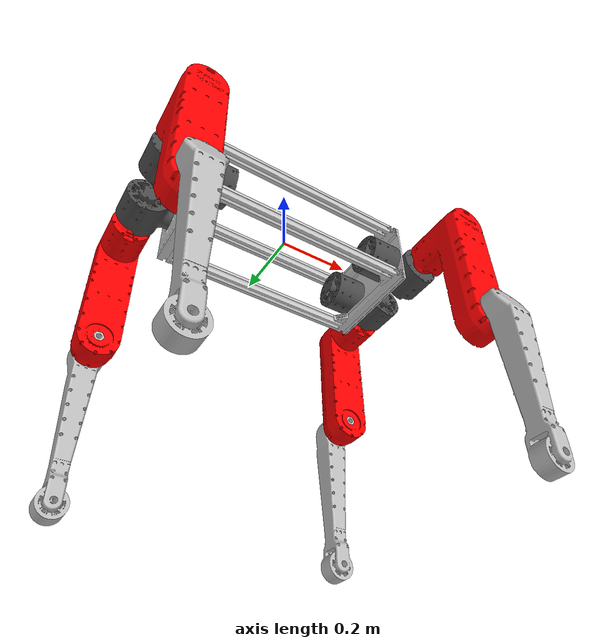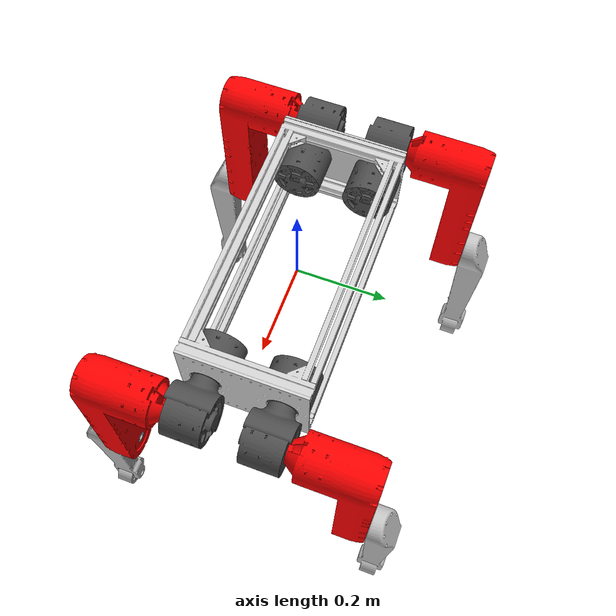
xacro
<?xml version="1.0"?>
 <robot name="dream_walker" xmlns:xacro="http://ros.org/wiki/xacro">
  <xacro:include filename="$(find dream_walker_description)/urdf/body/body.urdf.xacro"/>
  <xacro:include filename="$(find dream_walker_description)/urdf/leg/leg.param.xacro"/>
  <xacro:include filename="$(find dream_walker_description)/urdf/leg/leg.urdf.xacro"/>

  <!-- body -->
  <link name="base_link"/>
  <xacro:body parent="base_link">
  </xacro:body>

  <!-- leg -->
  <xacro:zero_leg prefix="A0" parent="base">
    <origin xyz="${joint_x0} -${joint_y0} ${joint_z0}" rpy="0 0 0"/>
    <origin xyz="-${visual_x0} ${visual_y0} -${visual_z0}"/>
    <origin xyz="-${visual_x0} ${visual_y0} -${visual_z0}"/>
    <origin xyz="-${x0} ${y0} ${z0}"/>
    <inertia ixx="${ixx0}" ixy="-${ixy0}" ixz="${ixz0}" iyy="${iyy0}" iyz="${iyz0}" izz="${izz0}"/>
  </xacro:zero_leg>
  <xacro:zero_leg prefix="B0" parent="base">
    <origin xyz="${joint_x0} ${joint_y0} ${joint_z0}" rpy="0 0 0"/>
    <origin xyz="-${visual_x0} -${visual_y0} -${visual_z0}"/>
    <origin xyz="-${visual_x0} -${visual_y0} -${visual_z0}"/>
    <origin xyz="-${x0} -${y0} ${z0}"/>
    <inertia ixx="${ixx0}" ixy="${ixy0}" ixz="${ixz0}" iyy="${iyy0}" iyz="${iyz0}" izz="${izz0}"/>
  </xacro:zero_leg>
  <xacro:zero_leg prefix="C0" parent="base">
    <origin xyz="-${joint_x0} -${joint_y0} ${joint_z0}" rpy="0 0 0"/>
    <origin xyz="${visual_x0} ${visual_y0} -${visual_z0}"/>
    <origin xyz="${visual_x0} ${visual_y0} -${visual_z0}"/>
    <origin xyz="${x0} ${y0} ${z0}"/>
    <inertia ixx="${ixx0}" ixy="-${ixy0}" ixz="${ixz0}" iyy="${iyy0}" iyz="${iyz0}" izz="${izz0}"/>
  </xacro:zero_leg>
  <xacro:zero_leg prefix="D0" parent="base">
    <origin xyz="-${joint_x0} ${joint_y0} ${joint_z0}" rpy="0 0 0"/>
    <origin xyz="${visual_x0} -${visual_y0} -${visual_z0}"/>
    <origin xyz="${visual_x0} -${visual_y0} -${visual_z0}"/>
    <origin xyz="${x0} -${y0} ${z0}"/>
    <inertia ixx="${ixx0}" ixy="-${ixy0}" ixz="${ixz0}" iyy="${iyy0}" iyz="${iyz0}" izz="${izz0}"/>
  </xacro:zero_leg>

  <xacro:first_leg prefix="A1" parent="A0">
    <origin xyz="${joint_x1} -${joint_y1} ${joint_z1}" rpy="0 0 0"/>
    <origin xyz="-${visual_x1} ${visual_y1} -${visual_z1}"/>
    <origin xyz="-${visual_x1} ${visual_y1} -${visual_z1}"/>
    <origin xyz="-${x1} ${y1} ${z1}"/>
    <inertia ixx="${ixx1}" ixy="${ixy1}" ixz="${ixz1}" iyy="${iyy1}" iyz="${iyz1}" izz="${izz1}"/>
  </xacro:first_leg>
  <xacro:first_leg prefix="B1" parent="B0">
    <origin xyz="${joint_x1} ${joint_y1} ${joint_z1}" rpy="0 0 0"/>
    <origin xyz="-${visual_x1} -${visual_y1} -${visual_z1}"/>
    <origin xyz="-${visual_x1} -${visual_y1} -${visual_z1}"/>
    <origin xyz="-${x1} -${y1} ${z1}"/>
    <inertia ixx="${ixx1}" ixy="${ixy1}" ixz="${ixz1}" iyy="${iyy1}" iyz="${iyz1}" izz="${izz1}"/>
  </xacro:first_leg>
  <xacro:first_leg prefix="C1" parent="C0">
    <origin xyz="-${joint_x1} -${joint_y1} ${joint_z1}" rpy="0 0 0"/>
    <origin xyz="${visual_x1} ${visual_y1} -${visual_z1}"/>
    <origin xyz="${visual_x1} ${visual_y1} -${visual_z1}"/>
    <origin xyz="${x1} ${y1} ${z1}"/>
    <inertia ixx="${ixx1}" ixy="-${ixy1}" ixz="${ixz1}" iyy="${iyy1}" iyz="${iyz1}" izz="${izz1}"/>
  </xacro:first_leg>
  <xacro:first_leg prefix="D1" parent="D0">
    <origin xyz="-${joint_x1} ${joint_y1} ${joint_z1}" rpy="0 0 0"/>
    <origin xyz="${visual_x1} -${visual_y1} -${visual_z1}"/>
    <origin xyz="${visual_x1} -${visual_y1} -${visual_z1}"/>
    <origin xyz="${x1} -${y1} ${z1}"/>
    <inertia ixx="${ixx1}" ixy="-${ixy1}" ixz="${ixz1}" iyy="${iyy1}" iyz="${iyz1}" izz="${izz1}"/>
  </xacro:first_leg>

  <xacro:second_leg prefix="A2" parent="A1">
    <origin xyz="${joint_x2} -${joint_y2} ${joint_z2}" rpy="0 0 0"/>
    <origin xyz="-${visual_x2} ${visual_y2} ${visual_z2}"/>
    <origin xyz="-${visual_x2} ${visual_y2} ${visual_z2}"/>
    <origin xyz="${x2} ${y2} ${z2}"/>
    <inertia ixx="${ixx2}" ixy="${ixy2}" ixz="-${ixz2}" iyy="${iyy2}" iyz="${iyz2}" izz="${izz2}"/>
  </xacro:second_leg>
  <xacro:second_leg prefix="B2" parent="B1">
    <origin xyz="${joint_x2} ${joint_y2} ${joint_z2}" rpy="0 0 0"/>
    <origin xyz="-${visual_x2} -${visual_y2} ${visual_z2}"/>
    <origin xyz="-${visual_x2} -${visual_y2} ${visual_z2}"/>
    <origin xyz="-${x2} -${y2} ${z2}"/>
    <inertia ixx="${ixx2}" ixy="${ixy2}" ixz="${ixz2}" iyy="${iyy2}" iyz="-${iyz2}" izz="${izz2}"/>
  </xacro:second_leg>
  <xacro:second_leg prefix="C2" parent="C1">
    <origin xyz="-${joint_x2} -${joint_y2} ${joint_z2}" rpy="0 0 0"/>
    <origin xyz="${visual_x2} ${visual_y2} ${visual_z2}"/>
    <origin xyz="${visual_x2} ${visual_y2} ${visual_z2}"/>
    <origin xyz="${x2} ${y2} ${z2}"/>
    <inertia ixx="${ixx2}" ixy="${ixy2}" ixz="-${ixz2}" iyy="${iyy2}" iyz="${iyz2}" izz="${izz2}"/>
  </xacro:second_leg>
  <xacro:second_leg prefix="D2" parent="D1">
    <origin xyz="-${joint_x2} ${joint_y2} ${joint_z2}" rpy="0 0 0"/>
    <origin xyz="${visual_x2} -${visual_y2} ${visual_z2}"/>
    <origin xyz="${visual_x2} -${visual_y2} ${visual_z2}"/>
    <origin xyz="${x2} -${y2} ${z2}"/>
    <inertia ixx="${ixx2}" ixy="${ixy2}" ixz="${ixz2}" iyy="${iyy2}" iyz="-${iyz2}" izz="${izz2}"/>
  </xacro:second_leg>

  <xacro:third_leg prefix="A3" parent="A2">
    <origin xyz="${joint_x3} -${joint_y3} ${joint_z3}" rpy="0 0 0"/>
    <origin xyz="-${visual_x3} ${visual_y3} ${visual_z3}"/>
    <origin xyz="-${visual_x3} ${visual_y3} ${visual_z3}"/>
    <origin xyz="${x3} ${y3} ${z3}"/>
    <inertia ixx="${ixx3}" ixy="${ixy3}" ixz="-${ixz3}" iyy="${iyy3}" iyz="${iyz3}" izz="${izz3}"/>
  </xacro:third_leg>

  <xacro:third_leg prefix="B3" parent="B2">
    <origin xyz="${joint_x3} ${joint_y3} ${joint_z3}" rpy="0 0 0"/>
    <origin xyz="-${visual_x3} -${visual_y3} ${visual_z3}"/>
    <origin xyz="-${visual_x3} -${visual_y3} ${visual_z3}"/>
    <origin xyz="${x3} -${y3} ${z3}"/>
    <inertia ixx="${ixx3}" ixy="${ixy3}" ixz="${ixz3}" iyy="${iyy3}" iyz="-${iyz3}" izz="${izz3}"/>
  </xacro:third_leg>

  <xacro:third_leg prefix="C3" parent="C2">
    <origin xyz="-${joint_x3} -${joint_y3} ${joint_z3}" rpy="0 0 0"/>
    <origin xyz="${visual_x3} ${visual_y3} ${visual_z3}"/>
    <origin xyz="${visual_x3} ${visual_y3} ${visual_z3}"/>
    <origin xyz="${x3} ${y3} ${z3}"/>
    <inertia ixx="${ixx3}" ixy="${ixy3}" ixz="-${ixz3}" iyy="${iyy3}" iyz="${iyz3}" izz="${izz3}"/>
  </xacro:third_leg>

  <xacro:third_leg prefix="D3" parent="D2">
    <origin xyz="-${joint_x3} ${joint_y3} ${joint_z3}" rpy="0 0 0"/>
    <origin xyz="${visual_x3} -${visual_y3} ${visual_z3}"/>
    <origin xyz="${visual_x3} -${visual_y3} ${visual_z3}"/>
    <origin xyz="${x3} -${y3} ${z3}"/>
    <inertia ixx="${ixx3}" ixy="${ixy3}" ixz="${ixz3}" iyy="${iyy3}" iyz="-${iyz3}" izz="${izz3}"/>
  </xacro:third_leg>

  <xacro:fourth_leg prefix="A4" parent="A3">
    <origin xyz="${joint_x4} -${joint_y4} ${joint_z4}" rpy="0 0 0"/>
  </xacro:fourth_leg>

  <xacro:fourth_leg prefix="B4" parent="B3">
    <origin xyz="${joint_x4} ${joint_y4} ${joint_z4}" rpy="0 0 0"/>
  </xacro:fourth_leg>

  <xacro:fourth_leg prefix="C4" parent="C3">
    <origin xyz="-${joint_x4} -${joint_y4} ${joint_z4}" rpy="0 0 0"/>
  </xacro:fourth_leg>

  <xacro:fourth_leg prefix="D4" parent="D3">
    <origin xyz="-${joint_x4} ${joint_y4} ${joint_z4}" rpy="0 0 0"/>
  </xacro:fourth_leg>

  <!-- ===============  Transmission =============== -->
  <xacro:leg_trans prefix="A1"/>
  <xacro:leg_trans prefix="A2"/>
  <xacro:leg_trans prefix="A3"/>
  <xacro:leg_trans prefix="B1"/>
  <xacro:leg_trans prefix="B2"/>
  <xacro:leg_trans prefix="B3"/>
  <xacro:leg_trans prefix="C1"/>
  <xacro:leg_trans prefix="C2"/>
  <xacro:leg_trans prefix="C3"/>
  <xacro:leg_trans prefix="D1"/>
  <xacro:leg_trans prefix="D2"/>
  <xacro:leg_trans prefix="D3"/>

  <!-- =============== Gazebo =============== -->

  <!-- Body -->
  <gazebo>
    <plugin filename="libgazebo_ros_p3d.so" name="p3d_base_controller">
      <alwaysOn>true</alwaysOn>
      <updateRate>25.0</updateRate>
      <bodyName>base_link</bodyName>
      <topicName>odom/ground_truth</topicName>
      <gaussianNoise>0.01</gaussianNoise>
      <frameName>world</frameName>
      <xyzOffsets>0 0 0</xyzOffsets>
      <rpyOffsets>0 0 0</rpyOffsets>
    </plugin>
  </gazebo>
  <gazebo>
    <plugin filename="libgazebo_ros_control.so" name="gazebo_ros_control">
      <robotNamespace>/dream_walker</robotNamespace>
      <legacyModeNS>true</legacyModeNS>
    </plugin>
  </gazebo>

  <xacro:body_gazebo/>

  <xacro:zero_gazebo prefix="A0"/>
  <xacro:zero_gazebo prefix="B0"/>
  <xacro:zero_gazebo prefix="C0"/>
  <xacro:zero_gazebo prefix="D0"/>

  <xacro:first_gazebo prefix="A1"/>
  <xacro:first_gazebo prefix="B1"/>
  <xacro:first_gazebo prefix="C1"/>
  <xacro:first_gazebo prefix="D1"/>

  <xacro:second_gazebo prefix="A2"/>
  <xacro:second_gazebo prefix="B2"/>
  <xacro:second_gazebo prefix="C2"/>
  <xacro:second_gazebo prefix="D2"/>

  <xacro:third_gazebo prefix="A3"/>
  <xacro:third_gazebo prefix="B3"/>
  <xacro:third_gazebo prefix="C3"/>
  <xacro:third_gazebo prefix="D3"/>

  <xacro:fourth_gazebo prefix="A4"/>
  <xacro:fourth_gazebo prefix="B4"/>
  <xacro:fourth_gazebo prefix="C4"/>
  <xacro:fourth_gazebo prefix="D4"/>

</robot>

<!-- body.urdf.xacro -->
<robot xmlns:xacro="http://ros.org/wiki/xacro">

  <xacro:include filename="$(find dream_walker_description)/urdf/body/body.gazebo.xacro"/>

  <xacro:macro name="body" params="parent">
    <joint name="body_link_joint" type="fixed">
      <parent link="${parent}"/>
      <child link="body_link"/>
    </joint>

    <link name="body_link">
      <visual>
        <geometry>
          <mesh filename="package://dream_walker_description/meshes/body.STL"/>
        </geometry>
        <material name="">
          <color rgba="0.8 0.8 0.8 2.0"/>
        </material>
      </visual>
      <collision>
        <geometry>
          <mesh filename="package://dream_walker_description/meshes/body.STL"/>
        </geometry>
      </collision>
      <inertial>
        <origin xyz="0 0 0"/>
        <mass value="3.0"/>
        <inertia ixx="0.027819" ixy="1.0E-6" ixz="0" iyy="0.106496" iyz="0" izz="0.113695" />
      </inertial>
    </link>
  </xacro:macro>

</robot>

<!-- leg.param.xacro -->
<robot xmlns:xacro="http://ros.org/wiki/xacro">

  <property name="mass0" value="1.75"/>
  <property name="mass1" value="1.74"/>
  <property name="mass2" value="3.66"/>
  <property name="mass3" value="1.72"/>

  <property name="x0" value="0.03900"/>
  <property name="x1" value="0.00440"/>
  <property name="x2" value="0.0000"/>
  <property name="x3" value="0.0000"/>
  <property name="x4" value="0.0000"/>

  <property name="y0" value="0.00002"/>
  <property name="y1" value="0.00113"/>
  <property name="y2" value="0.04882"/>
  <property name="y3" value="0.00214"/>
  <property name="y4" value="0.00000"/>

  <property name="z0" value="-0.00001"/>
  <property name="z1" value="-0.00005"/>
  <property name="z2" value="-0.09719"/>
  <property name="z3" value="-0.19011"/>
  <property name="z4" value="-0.00000"/>

  <property name="joint_x0" value="0.30000"/>
  <property name="joint_x1" value="0.08350"/>
  <property name="joint_x2" value="0.00000"/>
  <property name="joint_x3" value="0.00000"/>
  <property name="joint_x4" value="0.00000"/>

  <property name="joint_y0" value="0.08300"/>
  <property name="joint_y1" value="0.00000"/>
  <property name="joint_y2" value="0.20950"/>
  <property name="joint_y3" value="0.06500"/>
  <property name="joint_y4" value="0.00000"/>

  <property name="joint_z0" value="0.000000"/>
  <property name="joint_z1" value="0.000000"/>
  <property name="joint_z2" value="0.000000"/>
  <property name="joint_z3" value="-0.32000"/>
  <property name="joint_z4" value="-0.443000"/>

  <property name="visual_x0" value="0.300000"/>
  <property name="visual_x1" value="0.3835"/>
  <property name="visual_x2" value="0.3835"/>
  <property name="visual_x3" value="0.3835"/>

  <property name="visual_y0" value="0.083000"/>
  <property name="visual_y1" value="0.083000"/>
  <property name="visual_y2" value="0.292500"/>
  <property name="visual_y3" value="0.357500"/>

  <property name="visual_z0" value="0.000000"/>
  <property name="visual_z1" value="0.000000"/>
  <property name="visual_z2" value="0.000000"/>
  <property name="visual_z3" value="0.32000"/>

  <property name="ixx0" value="0.002137"/>
  <property name="ixx1" value="0.00229"/>
  <property name="ixx2" value="0.075241"/>
  <property name="ixx3" value="0.026984"/>

  <property name="ixy0" value="1.0E-06"/>
  <property name="ixy1" value="0.000008"/>
  <property name="ixy2" value="0"/>
  <property name="ixy3" value="0"/>

  <property name="ixz0" value="5.0E-06"/>
  <property name="ixz1" value="1.0E-06"/>
  <property name="ixz2" value="5.0E-06"/>
  <property name="ixz3" value="0"/>

  <property name="iyy0" value="0.002443"/>
  <property name="iyy1" value="0.002657"/>
  <property name="iyy2" value="0.069683"/>
  <property name="iyy3" value="0.026649"/>

  <property name="iyz0" value="0"/>
  <property name="iyz1" value="1.0E-06"/>
  <property name="iyz2" value="0.013776"/>
  <property name="iyz3" value="0.000717"/>

  <property name="izz0" value="0.002444"/>
  <property name="izz1" value="0.002511"/>
  <property name="izz2" value="0.011896"/>
  <property name="izz3" value="0.001426"/>

  <property name="ixx0a" value="0.01422"/>
  <property name="ixx1a" value="0.00229"/>
  <property name="ixx2a" value="0.075241"/>
  <property name="ixx3a" value="0.026984"/>

  <property name="ixy0a" value="0.038006"/>
  <property name="ixy1a" value="0.000008"/>
  <property name="ixy2a" value="0"/>
  <property name="ixy3a" value="0"/>

  <property name="ixz0a" value="0"/>
  <property name="ixz1a" value="1.0E-06"/>
  <property name="ixz2a" value="5.0E-06"/>
  <property name="ixz3a" value="0"/>

  <property name="iyy0a" value="0121986"/>
  <property name="iyy1a" value="0.002657"/>
  <property name="iyy2a" value="0.069683"/>
  <property name="iyy3a" value="0.026649"/>

  <property name="iyz0a" value="0.000002"/>
  <property name="iyz1a" value="1.0E-06"/>
  <property name="iyz2a" value="0.013776"/>
  <property name="iyz3a" value="0.000717"/>

  <property name="izz0a" value="0.134071"/>
  <property name="izz1a" value="0.002511"/>
  <property name="izz2a" value="0.011896"/>
  <property name="izz3a" value="0.001426"/>

</robot>

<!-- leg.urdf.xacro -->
<robot xmlns:xacro="http://ros.org/wiki/xacro">

  <xacro:include filename="$(find dream_walker_description)/urdf/leg/leg.param.xacro"/>
  <xacro:include filename="$(find dream_walker_description)/urdf/leg/leg.gazebo.xacro"/>
  <xacro:include filename="$(find dream_walker_description)/urdf/leg/leg.transmission.xacro"/>
  <xacro:include filename="$(find dream_walker_description)/urdf/leg/color.xacro"/>

  <xacro:macro name="zero_leg" params="prefix parent *joint_origin *visual_origin *collision_origin  *inertial_origin *inertia">
    <joint name="${prefix}_joint" type="fixed">
      <insert_block name="joint_origin"/>
      <parent link="${parent}_link"/>
      <child link="${prefix}_link"/>
      <axis xyz="0 0 0"/>
    </joint>

    <link name="${prefix}_link">
      <visual>
        <insert_block name="visual_origin"/>
        <geometry>
          <mesh filename="package://dream_walker_description/meshes/${prefix}_link.STL"/>
        </geometry>
        <material name="black"/>
      </visual>
      <collision>
        <insert_block name="collision_origin"/>
        <geometry>
          <mesh filename="package://dream_walker_description/meshes/${prefix}_link.STL"/>
        </geometry>
      </collision>
      <inertial>
        <insert_block name="inertial_origin"/>
        <mass value="${mass0}"/>
        <insert_block name="inertia"/>
      </inertial>
    </link>
  </xacro:macro>

  <xacro:macro name="first_leg" params="prefix parent *joint_origin *visual_origin *collision_origin *inertial_origin *inertia">
    <joint name="${prefix}_joint" type="revolute">
      <insert_block name="joint_origin"/>
      <parent link="${parent}_link"/>
      <child link="${prefix}_link"/>
      <axis xyz="1 0 0"/>
      <limit lower="-3.1416" upper="3.1416" effort="1000" velocity="1000"/>
    </joint>

    <link name="${prefix}_link">
      <visual>
        <insert_block name="visual_origin"/>
        <geometry>
          <mesh filename="package://dream_walker_description/meshes/${prefix}_link.STL"/>
        </geometry>
        <material name="black"/>
      </visual>
      <collision>
        <insert_block name="collision_origin"/>
        <geometry>
          <mesh filename="package://dream_walker_description/meshes/${prefix}_link.STL"/>
        </geometry>
      </collision>
      <inertial>
        <insert_block name="inertial_origin"/>
        <mass value="${mass1}"/>
        <insert_block name="inertia"/>
      </inertial>
    </link>
  </xacro:macro>

  <xacro:macro name="second_leg" params="prefix parent *joint_origin *visual_origin *collision_origin *inertial_origin *inertia">
    <joint name="${prefix}_joint" type="revolute">
      <insert_block name="joint_origin"/>
      <parent link="${parent}_link"/>
      <child link="${prefix}_link"/>
      <axis xyz="0 1 0"/>
      <limit lower="-9.42" upper="9.42" effort="1000" velocity="1000"/>
    </joint>

    <link name="${prefix}_link">
      <visual>
        <insert_block name="visual_origin"/>
        <geometry>
          <mesh filename="package://dream_walker_description/meshes/${prefix}_link.STL"/>
        </geometry>
        <material name="red"/>
      </visual>
      <collision>
        <insert_block name="collision_origin"/>
        <geometry>
          <mesh filename="package://dream_walker_description/meshes/${prefix}_link.STL"/>
        </geometry>
      </collision>
      <inertial>
        <insert_block name="inertial_origin"/>
        <mass value="${mass2}"/>
        <insert_block name="inertia"/>
      </inertial>
    </link>
  </xacro:macro>

  <xacro:macro name="third_leg" params="prefix parent *joint_origin *visual_origin *collision_origin *inertial_origin *inertia">
    <joint name="${prefix}_joint" type="revolute">
      <insert_block name="joint_origin"/>
      <parent link="${parent}_link"/>
      <child link="${prefix}_link"/>
      <axis xyz="0 1 0"/>
      <limit lower="-9.42" upper="9.42" effort="1000" velocity="1000"/>
    </joint>

    <link name="${prefix}_link">
      <visual>
        <insert_block name="visual_origin"/>
        <geometry>
          <mesh filename="package://dream_walker_description/meshes/${prefix}_link.STL"/>
        </geometry>
        <material name="silver"/>
      </visual>
      <collision>
        <insert_block name="collision_origin"/>
        <geometry>
          <mesh filename="package://dream_walker_description/meshes/${prefix}_link.STL"/>
        </geometry>
      </collision>
      <inertial>
        <insert_block name="inertial_origin"/>
        <mass value="${mass3}"/>
        <insert_block name="inertia"/>
      </inertial>
    </link>
  </xacro:macro>

  <xacro:macro name="fourth_leg" params="prefix parent *joint_origin">
    <joint name="${prefix}_joint" type="fixed">
      <insert_block name="joint_origin"/>
      <parent link="${parent}_link"/>
      <child link="${prefix}_link"/>
    </joint>

    <link name="${prefix}_link"/>
  </xacro:macro>

</robot>

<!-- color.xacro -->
<robot xmlns:xacro="http://ros.org/wiki/xacro">
  <material name="red">
    <color rgba="1.0 0.0 0.0 2.0"/>
  </material>
  <material name="gray">
    <color rgba="0.4 0.4 0.6 2.0"/>
  </material>
  <material name="light_gray">
    <color rgba="0.8 0.8 0.8 2.0"/>
  </material>
  <material name="silver">
    <color rgba="0.75 0.75 0.75 2.0"/>
  </material>
  <material name="black">
    <color rgba="0.3 0.3 0.3 2.0"/>
  </material>

</robot>
